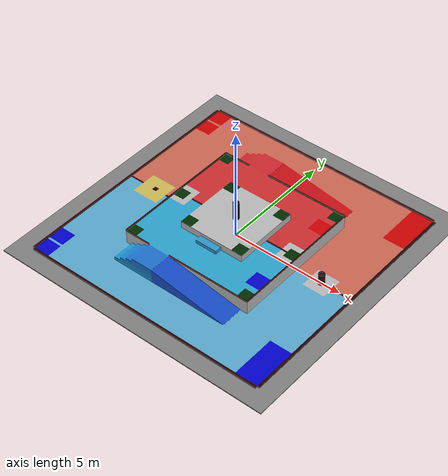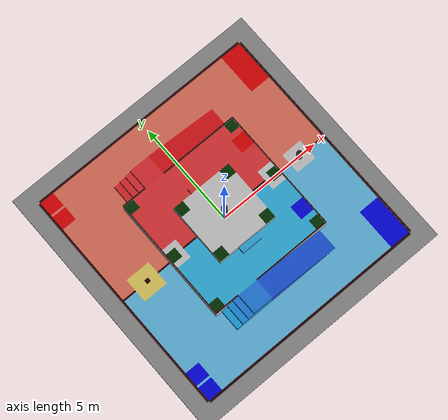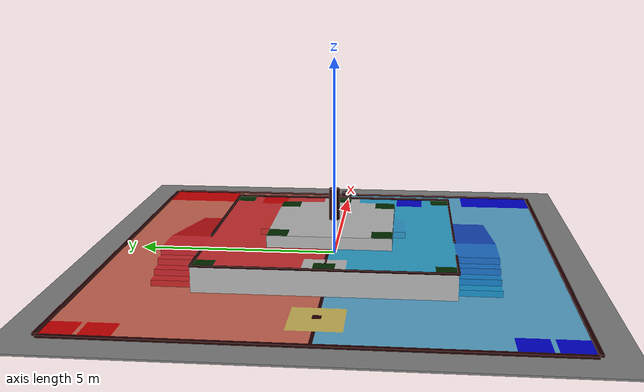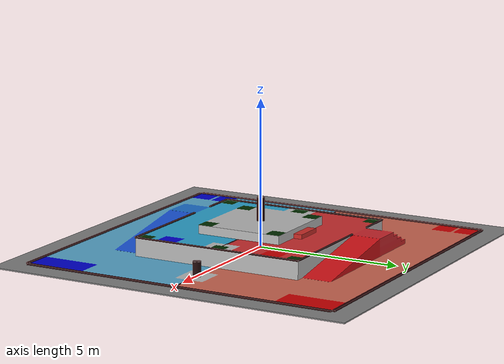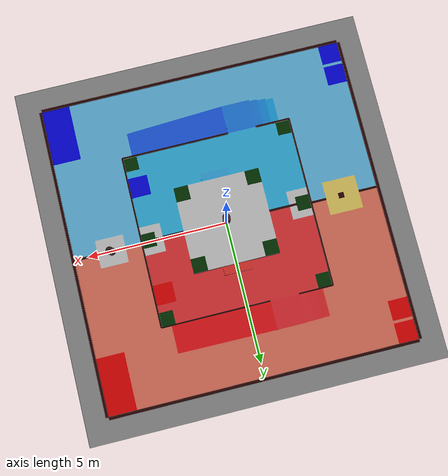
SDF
<?xml version="1.0"?>
<sdf version="1.6">
  <world name="robocon_world">

    <!-- ===================== 物理引擎（显式声明） ===================== -->
    <physics name="robocon_physics" type="ode">
      <max_step_size>0.001</max_step_size>
      <real_time_update_rate>1000</real_time_update_rate>
      <max_contacts>100</max_contacts>
      <ode>
        <solver>
          <type>quick</type>
          <iters>50</iters>
          <sor>1.3</sor>
        </solver>
        <constraints>
          <cfm>0.0</cfm>
          <erp>0.2</erp>
          <contact_max_correcting_vel>0.1</contact_max_correcting_vel>
          <contact_surface_layer>0.001</contact_surface_layer>
        </constraints>
      </ode>
    </physics>

    <gravity>0 0 -9.8</gravity>

    <!-- ===================== ROS 2 桥接 ===================== -->
    <plugin name="gazebo_ros_state" filename="libgazebo_ros_state.so"/>

    <!-- ===================== 光照与场景 ===================== -->
    <scene>
      <ambient>0.6 0.6 0.6 1</ambient>
      <background>0.7 0.7 0.7 1</background>
      <!-- 关阴影：Gazebo Classic(GUI) 在按需重绘/选中高亮时反复重建阴影贴图，
           在 NVIDIA 驱动 + 大网格场地（79 节点 DAE）下很容易卡住；导航仿真不需要阴影 -->
      <shadows>false</shadows>
    </scene>

    <light type="directional" name="sun">
      <cast_shadows>true</cast_shadows>
      <pose>0 0 10 0 0 0</pose>
      <diffuse>0.8 0.8 0.8 1</diffuse>
      <specular>0.2 0.2 0.2 1</specular>
      <direction>0.1 0.1 -1</direction>
    </light>

    <!-- ===================== 场地外地面（新增） ===================== -->
    <!-- 无限大的平面会让它与场地地面薄板共面冲突，因此用一块 40x40 的厚板，
         顶面 z=-0.01，比场地地面(顶面 z=0)低 1cm，避免共面接触抖动。 -->
    <model name="ground_plane">
      <static>true</static>
      <link name="link">
        <collision name="collision">
          <geometry>
            <box>
              <size>40 40 0.04</size>
            </box>
          </geometry>
          <pose>0 0 -0.03 0 0 0</pose>
          <surface>
            <friction>
              <ode>
                <mu>1.0</mu>
                <mu2>1.0</mu2>
              </ode>
            </friction>
            <contact>
              <ode>
                <kp>1e12</kp>
                <kd>1.0</kd>
                <max_vel>0.01</max_vel>
                <min_depth>0.001</min_depth>
              </ode>
            </contact>
            <bounce>
              <restitution_coefficient>0.0</restitution_coefficient>
              <threshold>1e6</threshold>
            </bounce>
          </surface>
        </collision>
        <visual name="visual">
          <geometry>
            <box>
              <size>40 40 0.04</size>
            </box>
          </geometry>
          <pose>0 0 -0.03 0 0 0</pose>
          <material>
            <ambient>0.4 0.4 0.4 1</ambient>
            <diffuse>0.5 0.5 0.5 1</diffuse>
            <specular>0.1 0.1 0.1 1</specular>
          </material>
        </visual>
      </link>
    </model>

    <!-- ===================== 比赛场地 ===================== -->
    <include>
      <uri>model://robocon_ground</uri>
      <pose>0 0 0 0 0 0</pose>
    </include>

  </world>
</sdf>

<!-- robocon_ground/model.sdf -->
<sdf version="1.6">
  <model name="robocon_ground">
    <static>true</static>
    <link name="field_link">
      <!-- The collision uses the same mesh and transform as the visual field. -->
      <visual name="field_visual">
        <geometry>
          <mesh>
            <uri>model://robocon_ground/meshes/Untitled.dae</uri>
          </mesh>
        </geometry>
      </visual>
      <collision name="field_collision">
        <geometry>
          <mesh>
            <uri>model://robocon_ground/meshes/Untitled.dae</uri>
          </mesh>
        </geometry>
        <surface>
          <friction>
            <ode>
              <mu>1.0</mu>
              <mu2>1.0</mu2>
            </ode>
          </friction>
          <bounce>
            <restitution_coefficient>0.0</restitution_coefficient>
          </bounce>
        </surface>
      </collision>
    </link>
  </model>
</sdf>
